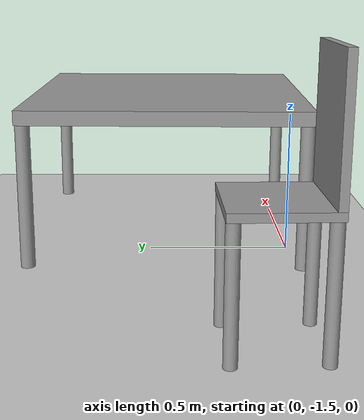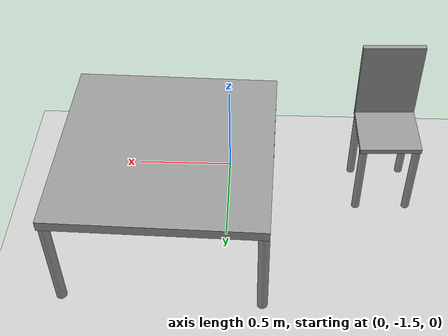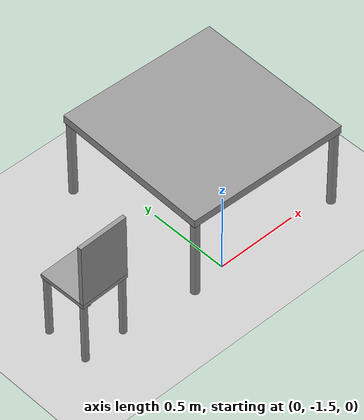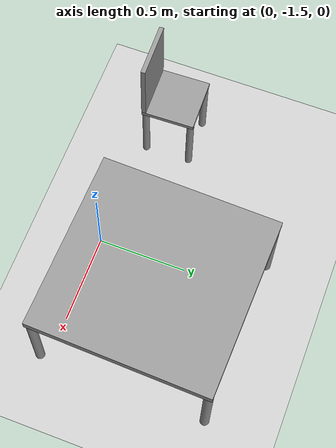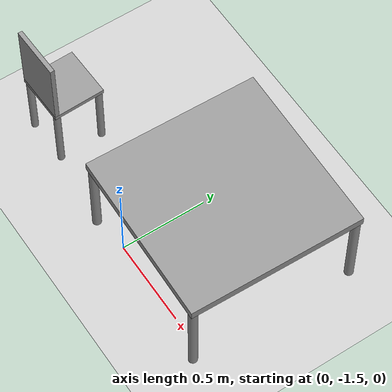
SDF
<sdf version="1.6">
 <world name="default">
  <model name="ground_plane">
   <static>1</static>
   <link name="link">
    <collision name="collision">
     <geometry><plane><normal>0 0 1</normal><size>100 100</size></plane></geometry>
     <surface><friction><ode><mu>100</mu><mu2>50</mu2></ode></friction></surface>
    </collision>
    <visual name="visual">
     <cast_shadows>0</cast_shadows>
     <geometry><plane><normal>0 0 1</normal><size>100 100</size></plane></geometry>
     <material>
      <script><uri>file://media/materials/scripts/gazebo.material</uri><name>Gazebo/Grey</name></script>
     </material>
    </visual>
   </link>
  </model>
  <model name="myTable_0">
   <link name="link_0">
    <pose>7.65666 6.42879 0.72 0 -0 0</pose>
    <inertial>
     <mass>1</mass>
     <inertia>
      <ixx>0.166667</ixx>
      <ixy>0</ixy>
      <ixz>0</ixz>
      <iyy>0.166667</iyy>
      <iyz>0</iyz>
      <izz>0.166667</izz>
     </inertia>
    </inertial>
    <visual name="visual">
     <geometry><box><size>1 1 0.05</size></box></geometry>
     <material>
      <lighting>1</lighting>
      <script><uri>file://media/materials/scripts/gazebo.material</uri><name>Gazebo/Grey</name></script>
      <ambient>0.3 0.3 0.3 1</ambient>
      <diffuse>0.7 0.7 0.7 1</diffuse>
      <specular>0.01 0.01 0.01 1</specular>
      <emissive>0 0 0 1</emissive>
      <shader type="vertex"><normal_map>__default__</normal_map></shader>
     </material>
    </visual>
    <collision name="collision">
     <geometry><box><size>1 1 0.05</size></box></geometry>
     <surface>
      <friction>
       <ode><mu>1</mu><mu2>1</mu2><fdir1>0 0 0</fdir1><slip1>0</slip1><slip2>0</slip2></ode>
       <torsional>
        <coefficient>1</coefficient>
        <patch_radius>0</patch_radius>
        <surface_radius>0</surface_radius>
        <use_patch_radius>1</use_patch_radius>
        <ode><slip>0</slip></ode>
       </torsional>
      </friction>
      <bounce><restitution_coefficient>0</restitution_coefficient><threshold>1e+06</threshold></bounce>
      <contact>
       <collide_without_contact>0</collide_without_contact>
       <collide_without_contact_bitmask>1</collide_without_contact_bitmask>
       <collide_bitmask>1</collide_bitmask>
       <ode>
        <soft_cfm>0</soft_cfm>
        <soft_erp>0.2</soft_erp>
        <kp>1e+13</kp>
        <kd>1</kd>
        <max_vel>0.01</max_vel>
        <min_depth>0</min_depth>
       </ode>
       <bullet>
        <split_impulse>1</split_impulse>
        <split_impulse_penetration_threshold>-0.01</split_impulse_penetration_threshold>
        <soft_cfm>0</soft_cfm>
        <soft_erp>0.2</soft_erp>
        <kp>1e+13</kp>
        <kd>1</kd>
       </bullet>
      </contact>
     </surface>
    </collision>
   </link>
   <link name="link_1">
    <pose>7.18166 5.95379 0.445 0 -0 0</pose>
    <inertial>
     <mass>1</mass>
     <inertia><ixx>0.145833</ixx><ixy>0</ixy><ixz>0</ixz><iyy>0.145833</iyy><iyz>0</iyz><izz>0.125</izz></inertia>
    </inertial>
    <visual name="visual">
     <geometry><cylinder><radius>0.025</radius><length>0.5</length></cylinder></geometry>
     <material>
      <lighting>1</lighting>
      <script><uri>file://media/materials/scripts/gazebo.material</uri><name>Gazebo/Grey</name></script>
      <ambient>0.3 0.3 0.3 1</ambient>
      <diffuse>0.7 0.7 0.7 1</diffuse>
      <specular>0.01 0.01 0.01 1</specular>
      <emissive>0 0 0 1</emissive>
      <shader type="vertex"><normal_map>__default__</normal_map></shader>
     </material>
    </visual>
    <collision name="collision">
     <geometry><cylinder><radius>0.025</radius><length>0.5</length></cylinder></geometry>
     <surface>
      <friction>
       <ode><mu>1</mu><mu2>1</mu2><fdir1>0 0 0</fdir1><slip1>0</slip1><slip2>0</slip2></ode>
       <torsional>
        <coefficient>1</coefficient>
        <patch_radius>0</patch_radius>
        <surface_radius>0</surface_radius>
        <use_patch_radius>1</use_patch_radius>
        <ode><slip>0</slip></ode>
       </torsional>
      </friction>
      <bounce><restitution_coefficient>0</restitution_coefficient><threshold>1e+06</threshold></bounce>
      <contact>
       <collide_without_contact>0</collide_without_contact>
       <collide_without_contact_bitmask>1</collide_without_contact_bitmask>
       <collide_bitmask>1</collide_bitmask>
       <ode>
        <soft_cfm>0</soft_cfm>
        <soft_erp>0.2</soft_erp>
        <kp>1e+13</kp>
        <kd>1</kd>
        <max_vel>0.01</max_vel>
        <min_depth>0</min_depth>
       </ode>
       <bullet>
        <split_impulse>1</split_impulse>
        <split_impulse_penetration_threshold>-0.01</split_impulse_penetration_threshold>
        <soft_cfm>0</soft_cfm>
        <soft_erp>0.2</soft_erp>
        <kp>1e+13</kp>
        <kd>1</kd>
       </bullet>
      </contact>
     </surface>
    </collision>
   </link>
   <link name="link_1_clone">
    <pose>7.18166 6.90379 0.445 0 -0 0</pose>
    <inertial>
     <mass>1</mass>
     <inertia><ixx>0.145833</ixx><ixy>0</ixy><ixz>0</ixz><iyy>0.145833</iyy><iyz>0</iyz><izz>0.125</izz></inertia>
    </inertial>
    <visual name="visual">
     <geometry><cylinder><radius>0.025</radius><length>0.5</length></cylinder></geometry>
     <material>
      <lighting>1</lighting>
      <script><uri>file://media/materials/scripts/gazebo.material</uri><name>Gazebo/Grey</name></script>
      <ambient>0.3 0.3 0.3 1</ambient>
      <diffuse>0.7 0.7 0.7 1</diffuse>
      <specular>0.01 0.01 0.01 1</specular>
      <emissive>0 0 0 1</emissive>
      <shader type="vertex"><normal_map>__default__</normal_map></shader>
     </material>
    </visual>
    <collision name="collision">
     <geometry><cylinder><radius>0.025</radius><length>0.5</length></cylinder></geometry>
     <surface>
      <friction>
       <ode><mu>1</mu><mu2>1</mu2><fdir1>0 0 0</fdir1><slip1>0</slip1><slip2>0</slip2></ode>
       <torsional>
        <coefficient>1</coefficient>
        <patch_radius>0</patch_radius>
        <surface_radius>0</surface_radius>
        <use_patch_radius>1</use_patch_radius>
        <ode><slip>0</slip></ode>
       </torsional>
      </friction>
      <bounce><restitution_coefficient>0</restitution_coefficient><threshold>1e+06</threshold></bounce>
      <contact>
       <collide_without_contact>0</collide_without_contact>
       <collide_without_contact_bitmask>1</collide_without_contact_bitmask>
       <collide_bitmask>1</collide_bitmask>
       <ode>
        <soft_cfm>0</soft_cfm>
        <soft_erp>0.2</soft_erp>
        <kp>1e+13</kp>
        <kd>1</kd>
        <max_vel>0.01</max_vel>
        <min_depth>0</min_depth>
       </ode>
       <bullet>
        <split_impulse>1</split_impulse>
        <split_impulse_penetration_threshold>-0.01</split_impulse_penetration_threshold>
        <soft_cfm>0</soft_cfm>
        <soft_erp>0.2</soft_erp>
        <kp>1e+13</kp>
        <kd>1</kd>
       </bullet>
      </contact>
     </surface>
    </collision>
   </link>
   <link name="link_1_clone_0">
    <pose>8.13166 6.90379 0.445 0 -0 0</pose>
    <inertial>
     <mass>1</mass>
     <inertia><ixx>0.145833</ixx><ixy>0</ixy><ixz>0</ixz><iyy>0.145833</iyy><iyz>0</iyz><izz>0.125</izz></inertia>
    </inertial>
    <visual name="visual">
     <geometry><cylinder><radius>0.025</radius><length>0.5</length></cylinder></geometry>
     <material>
      <lighting>1</lighting>
      <script><uri>file://media/materials/scripts/gazebo.material</uri><name>Gazebo/Grey</name></script>
      <ambient>0.3 0.3 0.3 1</ambient>
      <diffuse>0.7 0.7 0.7 1</diffuse>
      <specular>0.01 0.01 0.01 1</specular>
      <emissive>0 0 0 1</emissive>
      <shader type="vertex"><normal_map>__default__</normal_map></shader>
     </material>
    </visual>
    <collision name="collision">
     <geometry><cylinder><radius>0.025</radius><length>0.5</length></cylinder></geometry>
     <surface>
      <friction>
       <ode><mu>1</mu><mu2>1</mu2><fdir1>0 0 0</fdir1><slip1>0</slip1><slip2>0</slip2></ode>
       <torsional>
        <coefficient>1</coefficient>
        <patch_radius>0</patch_radius>
        <surface_radius>0</surface_radius>
        <use_patch_radius>1</use_patch_radius>
        <ode><slip>0</slip></ode>
       </torsional>
      </friction>
      <bounce><restitution_coefficient>0</restitution_coefficient><threshold>1e+06</threshold></bounce>
      <contact>
       <collide_without_contact>0</collide_without_contact>
       <collide_without_contact_bitmask>1</collide_without_contact_bitmask>
       <collide_bitmask>1</collide_bitmask>
       <ode>
        <soft_cfm>0</soft_cfm>
        <soft_erp>0.2</soft_erp>
        <kp>1e+13</kp>
        <kd>1</kd>
        <max_vel>0.01</max_vel>
        <min_depth>0</min_depth>
       </ode>
       <bullet>
        <split_impulse>1</split_impulse>
        <split_impulse_penetration_threshold>-0.01</split_impulse_penetration_threshold>
        <soft_cfm>0</soft_cfm>
        <soft_erp>0.2</soft_erp>
        <kp>1e+13</kp>
        <kd>1</kd>
       </bullet>
      </contact>
     </surface>
    </collision>
   </link>
   <link name="link_1_clone_1">
    <pose>8.13166 5.95379 0.445 0 -0 0</pose>
    <inertial>
     <mass>1</mass>
     <inertia><ixx>0.145833</ixx><ixy>0</ixy><ixz>0</ixz><iyy>0.145833</iyy><iyz>0</iyz><izz>0.125</izz></inertia>
    </inertial>
    <visual name="visual">
     <geometry><cylinder><radius>0.025</radius><length>0.5</length></cylinder></geometry>
     <material>
      <lighting>1</lighting>
      <script><uri>file://media/materials/scripts/gazebo.material</uri><name>Gazebo/Grey</name></script>
      <ambient>0.3 0.3 0.3 1</ambient>
      <diffuse>0.7 0.7 0.7 1</diffuse>
      <specular>0.01 0.01 0.01 1</specular>
      <emissive>0 0 0 1</emissive>
      <shader type="vertex"><normal_map>__default__</normal_map></shader>
     </material>
    </visual>
    <collision name="collision">
     <geometry><cylinder><radius>0.025</radius><length>0.5</length></cylinder></geometry>
     <surface>
      <friction>
       <ode><mu>1</mu><mu2>1</mu2><fdir1>0 0 0</fdir1><slip1>0</slip1><slip2>0</slip2></ode>
       <torsional>
        <coefficient>1</coefficient>
        <patch_radius>0</patch_radius>
        <surface_radius>0</surface_radius>
        <use_patch_radius>1</use_patch_radius>
        <ode><slip>0</slip></ode>
       </torsional>
      </friction>
      <bounce><restitution_coefficient>0</restitution_coefficient><threshold>1e+06</threshold></bounce>
      <contact>
       <collide_without_contact>0</collide_without_contact>
       <collide_without_contact_bitmask>1</collide_without_contact_bitmask>
       <collide_bitmask>1</collide_bitmask>
       <ode>
        <soft_cfm>0</soft_cfm>
        <soft_erp>0.2</soft_erp>
        <kp>1e+13</kp>
        <kd>1</kd>
        <max_vel>0.01</max_vel>
        <min_depth>0</min_depth>
       </ode>
       <bullet>
        <split_impulse>1</split_impulse>
        <split_impulse_penetration_threshold>-0.01</split_impulse_penetration_threshold>
        <soft_cfm>0</soft_cfm>
        <soft_erp>0.2</soft_erp>
        <kp>1e+13</kp>
        <kd>1</kd>
       </bullet>
      </contact>
     </surface>
    </collision>
   </link>
   <joint name="link_0_JOINT_0" type="fixed">
    <parent>link_0</parent>
    <child>link_1</child>
    <physics>
     <ode><limit><cfm>0</cfm><erp>0.2</erp></limit><suspension><cfm>0</cfm><erp>0.2</erp></suspension></ode>
    </physics>
   </joint>
   <joint name="link_0_JOINT_1" type="fixed">
    <parent>link_0</parent>
    <child>link_1_clone_1</child>
    <physics>
     <ode><limit><cfm>0</cfm><erp>0.2</erp></limit><suspension><cfm>0</cfm><erp>0.2</erp></suspension></ode>
    </physics>
   </joint>
   <joint name="link_0_JOINT_2" type="revolute">
    <parent>link_0</parent>
    <child>link_1_clone</child>
    <axis>
     <xyz>1 0 0</xyz>
     <use_parent_model_frame>0</use_parent_model_frame>
     <limit>
      <lower>-1.79769e+308</lower>
      <upper>1.79769e+308</upper>
      <effort>-1</effort>
      <velocity>-1</velocity>
     </limit>
     <dynamics>
      <spring_reference>0</spring_reference>
      <spring_stiffness>0</spring_stiffness>
      <damping>0</damping>
     </dynamics>
    </axis>
    <physics>
     <ode><limit><cfm>0</cfm><erp>0.2</erp></limit><suspension><cfm>0</cfm><erp>0.2</erp></suspension></ode>
    </physics>
   </joint>
   <joint name="link_0_JOINT_3" type="fixed">
    <parent>link_0</parent>
    <child>link_1_clone_0</child>
    <physics>
     <ode><limit><cfm>0</cfm><erp>0.2</erp></limit><suspension><cfm>0</cfm><erp>0.2</erp></suspension></ode>
    </physics>
   </joint>
   <static>0</static>
   <pose>-7.5568 -7.28185 -0.195003 1e-05 8e-06 -0.027451</pose>
  </model>
  <model name="myChair_clone_clone_0_clone">
   <link name="link_0">
    <pose>0.022917 -0 0.0914 0 -0 0</pose>
    <inertial>
     <mass>1</mass>
     <inertia>
      <ixx>0.166667</ixx>
      <ixy>0</ixy>
      <ixz>0</ixz>
      <iyy>0.166667</iyy>
      <iyz>0</iyz>
      <izz>0.166667</izz>
     </inertia>
    </inertial>
    <visual name="visual">
     <geometry><box><size>0.3 0.3 0.025</size></box></geometry>
     <material>
      <lighting>1</lighting>
      <script><uri>file://media/materials/scripts/gazebo.material</uri><name>Gazebo/Grey</name></script>
      <ambient>0.3 0.3 0.3 1</ambient>
      <diffuse>0.7 0.7 0.7 1</diffuse>
      <specular>0.01 0.01 0.01 1</specular>
      <emissive>0 0 0 1</emissive>
      <shader type="vertex"><normal_map>__default__</normal_map></shader>
     </material>
    </visual>
    <collision name="collision">
     <geometry><box><size>0.3 0.3 0.025</size></box></geometry>
     <surface>
      <friction>
       <ode><mu>1</mu><mu2>1</mu2><fdir1>0 0 0</fdir1><slip1>0</slip1><slip2>0</slip2></ode>
       <torsional>
        <coefficient>1</coefficient>
        <patch_radius>0</patch_radius>
        <surface_radius>0</surface_radius>
        <use_patch_radius>1</use_patch_radius>
        <ode><slip>0</slip></ode>
       </torsional>
      </friction>
      <bounce><restitution_coefficient>0</restitution_coefficient><threshold>1e+06</threshold></bounce>
      <contact>
       <collide_without_contact>0</collide_without_contact>
       <collide_without_contact_bitmask>1</collide_without_contact_bitmask>
       <collide_bitmask>1</collide_bitmask>
       <ode>
        <soft_cfm>0</soft_cfm>
        <soft_erp>0.2</soft_erp>
        <kp>1e+13</kp>
        <kd>1</kd>
        <max_vel>0.01</max_vel>
        <min_depth>0</min_depth>
       </ode>
       <bullet>
        <split_impulse>1</split_impulse>
        <split_impulse_penetration_threshold>-0.01</split_impulse_penetration_threshold>
        <soft_cfm>0</soft_cfm>
        <soft_erp>0.2</soft_erp>
        <kp>1e+13</kp>
        <kd>1</kd>
       </bullet>
      </contact>
     </surface>
    </collision>
   </link>
   <link name="link_1">
    <pose>-0.107083 -0.13 -0.11875 0 -0 0</pose>
    <inertial>
     <mass>1</mass>
     <inertia><ixx>0.145833</ixx><ixy>0</ixy><ixz>0</ixz><iyy>0.145833</iyy><iyz>0</iyz><izz>0.125</izz></inertia>
    </inertial>
    <visual name="visual">
     <geometry><cylinder><radius>0.02</radius><length>0.4</length></cylinder></geometry>
     <material>
      <lighting>1</lighting>
      <script><uri>file://media/materials/scripts/gazebo.material</uri><name>Gazebo/Grey</name></script>
      <ambient>0.3 0.3 0.3 1</ambient>
      <diffuse>0.7 0.7 0.7 1</diffuse>
      <specular>0.01 0.01 0.01 1</specular>
      <emissive>0 0 0 1</emissive>
      <shader type="vertex"><normal_map>__default__</normal_map></shader>
     </material>
    </visual>
    <collision name="collision">
     <geometry><cylinder><radius>0.02</radius><length>0.4</length></cylinder></geometry>
     <surface>
      <friction>
       <ode><mu>1</mu><mu2>1</mu2><fdir1>0 0 0</fdir1><slip1>0</slip1><slip2>0</slip2></ode>
       <torsional>
        <coefficient>1</coefficient>
        <patch_radius>0</patch_radius>
        <surface_radius>0</surface_radius>
        <use_patch_radius>1</use_patch_radius>
        <ode><slip>0</slip></ode>
       </torsional>
      </friction>
      <bounce><restitution_coefficient>0</restitution_coefficient><threshold>1e+06</threshold></bounce>
      <contact>
       <collide_without_contact>0</collide_without_contact>
       <collide_without_contact_bitmask>1</collide_without_contact_bitmask>
       <collide_bitmask>1</collide_bitmask>
       <ode>
        <soft_cfm>0</soft_cfm>
        <soft_erp>0.2</soft_erp>
        <kp>1e+13</kp>
        <kd>1</kd>
        <max_vel>0.01</max_vel>
        <min_depth>0</min_depth>
       </ode>
       <bullet>
        <split_impulse>1</split_impulse>
        <split_impulse_penetration_threshold>-0.01</split_impulse_penetration_threshold>
        <soft_cfm>0</soft_cfm>
        <soft_erp>0.2</soft_erp>
        <kp>1e+13</kp>
        <kd>1</kd>
       </bullet>
      </contact>
     </surface>
    </collision>
   </link>
   <link name="link_1_clone">
    <pose>-0.107083 0.13 -0.11875 0 -0 0</pose>
    <inertial>
     <mass>1</mass>
     <inertia><ixx>0.145833</ixx><ixy>0</ixy><ixz>0</ixz><iyy>0.145833</iyy><iyz>0</iyz><izz>0.125</izz></inertia>
    </inertial>
    <visual name="visual">
     <geometry><cylinder><radius>0.02</radius><length>0.4</length></cylinder></geometry>
     <material>
      <lighting>1</lighting>
      <script><uri>file://media/materials/scripts/gazebo.material</uri><name>Gazebo/Grey</name></script>
      <ambient>0.3 0.3 0.3 1</ambient>
      <diffuse>0.7 0.7 0.7 1</diffuse>
      <specular>0.01 0.01 0.01 1</specular>
      <emissive>0 0 0 1</emissive>
      <shader type="vertex"><normal_map>__default__</normal_map></shader>
     </material>
    </visual>
    <collision name="collision">
     <geometry><cylinder><radius>0.02</radius><length>0.4</length></cylinder></geometry>
     <surface>
      <friction>
       <ode><mu>1</mu><mu2>1</mu2><fdir1>0 0 0</fdir1><slip1>0</slip1><slip2>0</slip2></ode>
       <torsional>
        <coefficient>1</coefficient>
        <patch_radius>0</patch_radius>
        <surface_radius>0</surface_radius>
        <use_patch_radius>1</use_patch_radius>
        <ode><slip>0</slip></ode>
       </torsional>
      </friction>
      <bounce><restitution_coefficient>0</restitution_coefficient><threshold>1e+06</threshold></bounce>
      <contact>
       <collide_without_contact>0</collide_without_contact>
       <collide_without_contact_bitmask>1</collide_without_contact_bitmask>
       <collide_bitmask>1</collide_bitmask>
       <ode>
        <soft_cfm>0</soft_cfm>
        <soft_erp>0.2</soft_erp>
        <kp>1e+13</kp>
        <kd>1</kd>
        <max_vel>0.01</max_vel>
        <min_depth>0</min_depth>
       </ode>
       <bullet>
        <split_impulse>1</split_impulse>
        <split_impulse_penetration_threshold>-0.01</split_impulse_penetration_threshold>
        <soft_cfm>0</soft_cfm>
        <soft_erp>0.2</soft_erp>
        <kp>1e+13</kp>
        <kd>1</kd>
       </bullet>
      </contact>
     </surface>
    </collision>
   </link>
   <link name="link_1_clone_0">
    <pose>0.152917 -0.13 -0.11875 0 -0 0</pose>
    <inertial>
     <mass>1</mass>
     <inertia><ixx>0.145833</ixx><ixy>0</ixy><ixz>0</ixz><iyy>0.145833</iyy><iyz>0</iyz><izz>0.125</izz></inertia>
    </inertial>
    <visual name="visual">
     <geometry><cylinder><radius>0.02</radius><length>0.4</length></cylinder></geometry>
     <material>
      <lighting>1</lighting>
      <script><uri>file://media/materials/scripts/gazebo.material</uri><name>Gazebo/Grey</name></script>
      <ambient>0.3 0.3 0.3 1</ambient>
      <diffuse>0.7 0.7 0.7 1</diffuse>
      <specular>0.01 0.01 0.01 1</specular>
      <emissive>0 0 0 1</emissive>
      <shader type="vertex"><normal_map>__default__</normal_map></shader>
     </material>
    </visual>
    <collision name="collision">
     <geometry><cylinder><radius>0.02</radius><length>0.4</length></cylinder></geometry>
     <surface>
      <friction>
       <ode><mu>1</mu><mu2>1</mu2><fdir1>0 0 0</fdir1><slip1>0</slip1><slip2>0</slip2></ode>
       <torsional>
        <coefficient>1</coefficient>
        <patch_radius>0</patch_radius>
        <surface_radius>0</surface_radius>
        <use_patch_radius>1</use_patch_radius>
        <ode><slip>0</slip></ode>
       </torsional>
      </friction>
      <bounce><restitution_coefficient>0</restitution_coefficient><threshold>1e+06</threshold></bounce>
      <contact>
       <collide_without_contact>0</collide_without_contact>
       <collide_without_contact_bitmask>1</collide_without_contact_bitmask>
       <collide_bitmask>1</collide_bitmask>
       <ode>
        <soft_cfm>0</soft_cfm>
        <soft_erp>0.2</soft_erp>
        <kp>1e+13</kp>
        <kd>1</kd>
        <max_vel>0.01</max_vel>
        <min_depth>0</min_depth>
       </ode>
       <bullet>
        <split_impulse>1</split_impulse>
        <split_impulse_penetration_threshold>-0.01</split_impulse_penetration_threshold>
        <soft_cfm>0</soft_cfm>
        <soft_erp>0.2</soft_erp>
        <kp>1e+13</kp>
        <kd>1</kd>
       </bullet>
      </contact>
     </surface>
    </collision>
   </link>
   <link name="link_1_clone_1">
    <pose>0.152917 0.13 -0.11875 0 -0 0</pose>
    <inertial>
     <mass>1</mass>
     <inertia><ixx>0.145833</ixx><ixy>0</ixy><ixz>0</ixz><iyy>0.145833</iyy><iyz>0</iyz><izz>0.125</izz></inertia>
    </inertial>
    <visual name="visual">
     <geometry><cylinder><radius>0.02</radius><length>0.4</length></cylinder></geometry>
     <material>
      <lighting>1</lighting>
      <script><uri>file://media/materials/scripts/gazebo.material</uri><name>Gazebo/Grey</name></script>
      <ambient>0.3 0.3 0.3 1</ambient>
      <diffuse>0.7 0.7 0.7 1</diffuse>
      <specular>0.01 0.01 0.01 1</specular>
      <emissive>0 0 0 1</emissive>
      <shader type="vertex"><normal_map>__default__</normal_map></shader>
     </material>
    </visual>
    <collision name="collision">
     <geometry><cylinder><radius>0.02</radius><length>0.4</length></cylinder></geometry>
     <surface>
      <friction>
       <ode><mu>1</mu><mu2>1</mu2><fdir1>0 0 0</fdir1><slip1>0</slip1><slip2>0</slip2></ode>
       <torsional>
        <coefficient>1</coefficient>
        <patch_radius>0</patch_radius>
        <surface_radius>0</surface_radius>
        <use_patch_radius>1</use_patch_radius>
        <ode><slip>0</slip></ode>
       </torsional>
      </friction>
      <bounce><restitution_coefficient>0</restitution_coefficient><threshold>1e+06</threshold></bounce>
      <contact>
       <collide_without_contact>0</collide_without_contact>
       <collide_without_contact_bitmask>1</collide_without_contact_bitmask>
       <collide_bitmask>1</collide_bitmask>
       <ode>
        <soft_cfm>0</soft_cfm>
        <soft_erp>0.2</soft_erp>
        <kp>1e+13</kp>
        <kd>1</kd>
        <max_vel>0.01</max_vel>
        <min_depth>0</min_depth>
       </ode>
       <bullet>
        <split_impulse>1</split_impulse>
        <split_impulse_penetration_threshold>-0.01</split_impulse_penetration_threshold>
        <soft_cfm>0</soft_cfm>
        <soft_erp>0.2</soft_erp>
        <kp>1e+13</kp>
        <kd>1</kd>
       </bullet>
      </contact>
     </surface>
    </collision>
   </link>
   <link name="link_2">
    <pose>-0.114583 0 0.303495 0 -0 0</pose>
    <inertial>
     <mass>1</mass>
     <inertia>
      <ixx>0.166667</ixx>
      <ixy>0</ixy>
      <ixz>0</ixz>
      <iyy>0.166667</iyy>
      <iyz>0</iyz>
      <izz>0.166667</izz>
     </inertia>
    </inertial>
    <visual name="visual">
     <geometry><box><size>0.025 0.3 0.4</size></box></geometry>
     <material>
      <lighting>1</lighting>
      <script><uri>file://media/materials/scripts/gazebo.material</uri><name>Gazebo/Grey</name></script>
      <ambient>0.3 0.3 0.3 1</ambient>
      <diffuse>0.7 0.7 0.7 1</diffuse>
      <specular>0.01 0.01 0.01 1</specular>
      <emissive>0 0 0 1</emissive>
      <shader type="vertex"><normal_map>__default__</normal_map></shader>
     </material>
    </visual>
    <collision name="collision">
     <geometry><box><size>0.025 0.3 0.4</size></box></geometry>
     <surface>
      <friction>
       <ode><mu>1</mu><mu2>1</mu2><fdir1>0 0 0</fdir1><slip1>0</slip1><slip2>0</slip2></ode>
       <torsional>
        <coefficient>1</coefficient>
        <patch_radius>0</patch_radius>
        <surface_radius>0</surface_radius>
        <use_patch_radius>1</use_patch_radius>
        <ode><slip>0</slip></ode>
       </torsional>
      </friction>
      <bounce><restitution_coefficient>0</restitution_coefficient><threshold>1e+06</threshold></bounce>
      <contact>
       <collide_without_contact>0</collide_without_contact>
       <collide_without_contact_bitmask>1</collide_without_contact_bitmask>
       <collide_bitmask>1</collide_bitmask>
       <ode>
        <soft_cfm>0</soft_cfm>
        <soft_erp>0.2</soft_erp>
        <kp>1e+13</kp>
        <kd>1</kd>
        <max_vel>0.01</max_vel>
        <min_depth>0</min_depth>
       </ode>
       <bullet>
        <split_impulse>1</split_impulse>
        <split_impulse_penetration_threshold>-0.01</split_impulse_penetration_threshold>
        <soft_cfm>0</soft_cfm>
        <soft_erp>0.2</soft_erp>
        <kp>1e+13</kp>
        <kd>1</kd>
       </bullet>
      </contact>
     </surface>
    </collision>
   </link>
   <joint name="link_0_JOINT_0" type="fixed">
    <parent>link_0</parent>
    <child>link_1</child>
    <physics>
     <ode><limit><cfm>0</cfm><erp>0.2</erp></limit><suspension><cfm>0</cfm><erp>0.2</erp></suspension></ode>
    </physics>
   </joint>
   <joint name="link_0_JOINT_1" type="fixed">
    <parent>link_0</parent>
    <child>link_1_clone</child>
    <physics>
     <ode><limit><cfm>0</cfm><erp>0.2</erp></limit><suspension><cfm>0</cfm><erp>0.2</erp></suspension></ode>
    </physics>
   </joint>
   <joint name="link_0_JOINT_2" type="fixed">
    <parent>link_0</parent>
    <child>link_1_clone_0</child>
    <physics>
     <ode><limit><cfm>0</cfm><erp>0.2</erp></limit><suspension><cfm>0</cfm><erp>0.2</erp></suspension></ode>
    </physics>
   </joint>
   <joint name="link_0_JOINT_3" type="fixed">
    <parent>link_0</parent>
    <child>link_1_clone_1</child>
    <physics>
     <ode><limit><cfm>0</cfm><erp>0.2</erp></limit><suspension><cfm>0</cfm><erp>0.2</erp></suspension></ode>
    </physics>
   </joint>
   <joint name="link_0_JOINT_5" type="revolute">
    <parent>link_0</parent>
    <child>link_2</child>
    <axis>
     <xyz>1 0 0</xyz>
     <use_parent_model_frame>0</use_parent_model_frame>
     <limit>
      <lower>-1.79769e+308</lower>
      <upper>1.79769e+308</upper>
      <effort>-1</effort>
      <velocity>-1</velocity>
     </limit>
     <dynamics>
      <spring_reference>0</spring_reference>
      <spring_stiffness>0</spring_stiffness>
      <damping>0</damping>
      <friction>0</friction>
     </dynamics>
    </axis>
    <physics>
     <ode><limit><cfm>0</cfm><erp>0.2</erp></limit><suspension><cfm>0</cfm><erp>0.2</erp></suspension></ode>
    </physics>
   </joint>
   <static>0</static>
   <pose>-0.792313 -1.37274 0.318742 1e-06 -2e-06 1.60026</pose>
  </model>
 </world>
</sdf>
